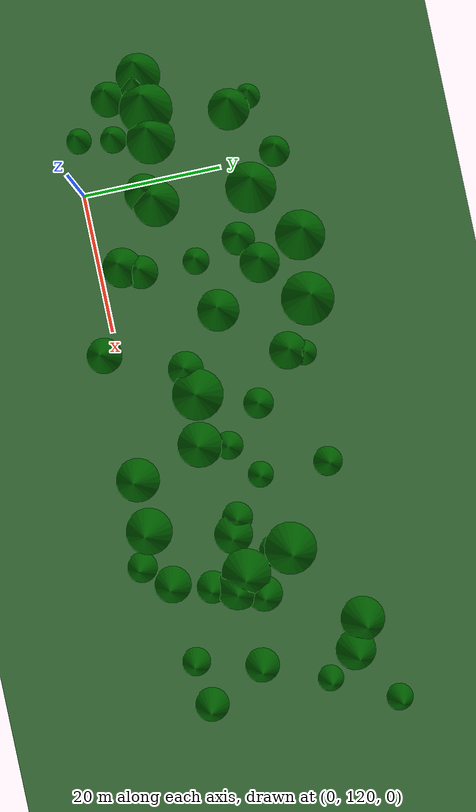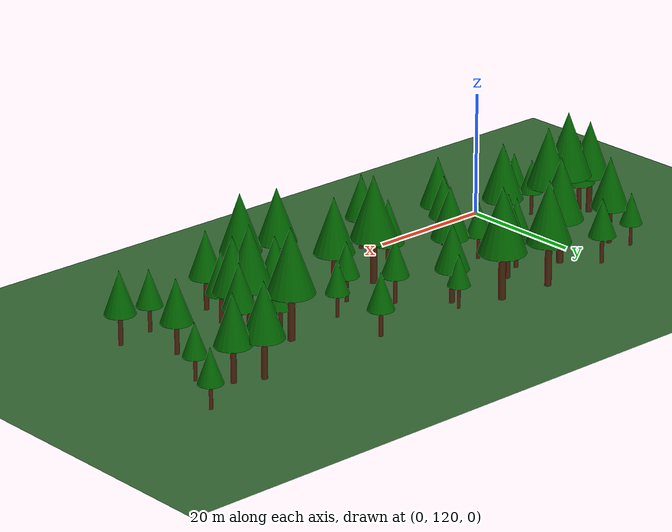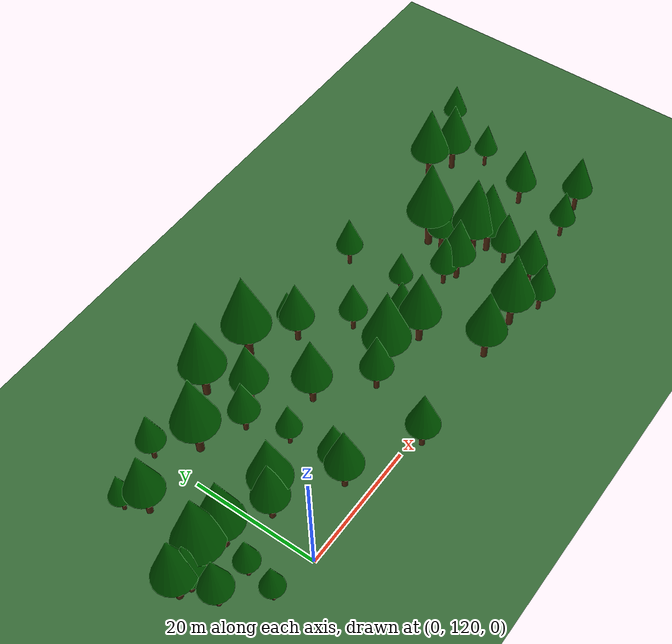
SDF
<sdf version="1.9">
 <world name="Forest_world">
  <model name="ground_plane">
   <static>true</static>
   <link name="link">
    <collision name="collision">
     <geometry><plane><normal>0 0 1</normal><size>500 500</size></plane></geometry>
    </collision>
    <visual name="visual">
     <geometry><plane><normal>0 0 1</normal><size>500 500</size></plane></geometry>
     <material><ambient>0.2 0.4 0.2 1</ambient><diffuse>0.2 0.4 0.2 1</diffuse></material>
    </visual>
   </link>
  </model>
  <model name="tree_13">
   <static>true</static>
   <pose>60.52 133.61 0 0 0 0</pose>
   <link name="link">
    <collision name="trunk_col">
     <pose>0 0 2.55 0 0 0</pose>
     <geometry><cylinder><radius>0.41</radius><length>5.10</length></cylinder></geometry>
    </collision>
    <visual name="trunk_vis">
     <pose>0 0 2.55 0 0 0</pose>
     <geometry><cylinder><radius>0.41</radius><length>5.10</length></cylinder></geometry>
     <material><ambient>0.3 0.15 0.05 1</ambient><diffuse>0.3 0.15 0.05 1</diffuse></material>
    </visual>
    <collision name="leaves_col">
     <pose>0 0 8.67 0 0 0</pose>
     <geometry><cone><radius>2.55</radius><length>7.14</length></cone></geometry>
    </collision>
    <visual name="leaves_vis">
     <pose>0 0 8.67 0 0 0</pose>
     <geometry><cone><radius>2.55</radius><length>7.14</length></cone></geometry>
     <material><ambient>0.0 0.4 0.0 1</ambient><diffuse>0.0 0.4 0.0 1</diffuse></material>
    </visual>
   </link>
  </model>
  <model name="tree_14">
   <static>true</static>
   <pose>31.30 130.26 0 0 0 0</pose>
   <link name="link">
    <collision name="trunk_col">
     <pose>0 0 3.61 0 0 0</pose>
     <geometry><cylinder><radius>0.58</radius><length>7.22</length></cylinder></geometry>
    </collision>
    <visual name="trunk_vis">
     <pose>0 0 3.61 0 0 0</pose>
     <geometry><cylinder><radius>0.58</radius><length>7.22</length></cylinder></geometry>
     <material><ambient>0.3 0.15 0.05 1</ambient><diffuse>0.3 0.15 0.05 1</diffuse></material>
    </visual>
    <collision name="leaves_col">
     <pose>0 0 12.27 0 0 0</pose>
     <geometry><cone><radius>3.61</radius><length>10.10</length></cone></geometry>
    </collision>
    <visual name="leaves_vis">
     <pose>0 0 12.27 0 0 0</pose>
     <geometry><cone><radius>3.61</radius><length>10.10</length></cone></geometry>
     <material><ambient>0.0 0.4 0.0 1</ambient><diffuse>0.0 0.4 0.0 1</diffuse></material>
    </visual>
   </link>
  </model>
  <model name="tree_25">
   <static>true</static>
   <pose>74.31 140.23 0 0 0 0</pose>
   <link name="link">
    <collision name="trunk_col">
     <pose>0 0 1.88 0 0 0</pose>
     <geometry><cylinder><radius>0.30</radius><length>3.75</length></cylinder></geometry>
    </collision>
    <visual name="trunk_vis">
     <pose>0 0 1.88 0 0 0</pose>
     <geometry><cylinder><radius>0.30</radius><length>3.75</length></cylinder></geometry>
     <material><ambient>0.3 0.15 0.05 1</ambient><diffuse>0.3 0.15 0.05 1</diffuse></material>
    </visual>
    <collision name="leaves_col">
     <pose>0 0 6.38 0 0 0</pose>
     <geometry><cone><radius>1.88</radius><length>5.25</length></cone></geometry>
    </collision>
    <visual name="leaves_vis">
     <pose>0 0 6.38 0 0 0</pose>
     <geometry><cone><radius>1.88</radius><length>5.25</length></cone></geometry>
     <material><ambient>0.0 0.4 0.0 1</ambient><diffuse>0.0 0.4 0.0 1</diffuse></material>
    </visual>
   </link>
  </model>
  <model name="tree_29">
   <static>true</static>
   <pose>0.05 147.82 0 0 0 0</pose>
   <link name="link">
    <collision name="trunk_col">
     <pose>0 0 2.18 0 0 0</pose>
     <geometry><cylinder><radius>0.35</radius><length>4.36</length></cylinder></geometry>
    </collision>
    <visual name="trunk_vis">
     <pose>0 0 2.18 0 0 0</pose>
     <geometry><cylinder><radius>0.35</radius><length>4.36</length></cylinder></geometry>
     <material><ambient>0.3 0.15 0.05 1</ambient><diffuse>0.3 0.15 0.05 1</diffuse></material>
    </visual>
    <collision name="leaves_col">
     <pose>0 0 7.42 0 0 0</pose>
     <geometry><cone><radius>2.18</radius><length>6.11</length></cone></geometry>
    </collision>
    <visual name="leaves_vis">
     <pose>0 0 7.42 0 0 0</pose>
     <geometry><cone><radius>2.18</radius><length>6.11</length></cone></geometry>
     <material><ambient>0.0 0.4 0.0 1</ambient><diffuse>0.0 0.4 0.0 1</diffuse></material>
    </visual>
   </link>
  </model>
  <model name="tree_32">
   <static>true</static>
   <pose>70.30 131.21 0 0 0 0</pose>
   <link name="link">
    <collision name="trunk_col">
     <pose>0 0 2.46 0 0 0</pose>
     <geometry><cylinder><radius>0.39</radius><length>4.92</length></cylinder></geometry>
    </collision>
    <visual name="trunk_vis">
     <pose>0 0 2.46 0 0 0</pose>
     <geometry><cylinder><radius>0.39</radius><length>4.92</length></cylinder></geometry>
     <material><ambient>0.3 0.15 0.05 1</ambient><diffuse>0.3 0.15 0.05 1</diffuse></material>
    </visual>
    <collision name="leaves_col">
     <pose>0 0 8.36 0 0 0</pose>
     <geometry><cone><radius>2.46</radius><length>6.88</length></cone></geometry>
    </collision>
    <visual name="leaves_vis">
     <pose>0 0 8.36 0 0 0</pose>
     <geometry><cone><radius>2.46</radius><length>6.88</length></cone></geometry>
     <material><ambient>0.0 0.4 0.0 1</ambient><diffuse>0.0 0.4 0.0 1</diffuse></material>
    </visual>
   </link>
  </model>
  <model name="tree_34">
   <static>true</static>
   <pose>41.25 119.61 0 0 0 0</pose>
   <link name="link">
    <collision name="trunk_col">
     <pose>0 0 3.09 0 0 0</pose>
     <geometry><cylinder><radius>0.49</radius><length>6.18</length></cylinder></geometry>
    </collision>
    <visual name="trunk_vis">
     <pose>0 0 3.09 0 0 0</pose>
     <geometry><cylinder><radius>0.49</radius><length>6.18</length></cylinder></geometry>
     <material><ambient>0.3 0.15 0.05 1</ambient><diffuse>0.3 0.15 0.05 1</diffuse></material>
    </visual>
    <collision name="leaves_col">
     <pose>0 0 10.50 0 0 0</pose>
     <geometry><cone><radius>3.09</radius><length>8.65</length></cone></geometry>
    </collision>
    <visual name="leaves_vis">
     <pose>0 0 10.50 0 0 0</pose>
     <geometry><cone><radius>3.09</radius><length>8.65</length></cone></geometry>
     <material><ambient>0.0 0.4 0.0 1</ambient><diffuse>0.0 0.4 0.0 1</diffuse></material>
    </visual>
   </link>
  </model>
  <model name="tree_38">
   <static>true</static>
   <pose>78.88 149.20 0 0 0 0</pose>
   <link name="link">
    <collision name="trunk_col">
     <pose>0 0 1.94 0 0 0</pose>
     <geometry><cylinder><radius>0.31</radius><length>3.89</length></cylinder></geometry>
    </collision>
    <visual name="trunk_vis">
     <pose>0 0 1.94 0 0 0</pose>
     <geometry><cylinder><radius>0.31</radius><length>3.89</length></cylinder></geometry>
     <material><ambient>0.3 0.15 0.05 1</ambient><diffuse>0.3 0.15 0.05 1</diffuse></material>
    </visual>
    <collision name="leaves_col">
     <pose>0 0 6.61 0 0 0</pose>
     <geometry><cone><radius>1.94</radius><length>5.44</length></cone></geometry>
    </collision>
    <visual name="leaves_vis">
     <pose>0 0 6.61 0 0 0</pose>
     <geometry><cone><radius>1.94</radius><length>5.44</length></cone></geometry>
     <material><ambient>0.0 0.4 0.0 1</ambient><diffuse>0.0 0.4 0.0 1</diffuse></material>
    </visual>
   </link>
  </model>
  <model name="tree_42">
   <static>true</static>
   <pose>4.71 143.42 0 0 0 0</pose>
   <link name="link">
    <collision name="trunk_col">
     <pose>0 0 3.57 0 0 0</pose>
     <geometry><cylinder><radius>0.57</radius><length>7.14</length></cylinder></geometry>
    </collision>
    <visual name="trunk_vis">
     <pose>0 0 3.57 0 0 0</pose>
     <geometry><cylinder><radius>0.57</radius><length>7.14</length></cylinder></geometry>
     <material><ambient>0.3 0.15 0.05 1</ambient><diffuse>0.3 0.15 0.05 1</diffuse></material>
    </visual>
    <collision name="leaves_col">
     <pose>0 0 12.14 0 0 0</pose>
     <geometry><cone><radius>3.57</radius><length>10.00</length></cone></geometry>
    </collision>
    <visual name="leaves_vis">
     <pose>0 0 12.14 0 0 0</pose>
     <geometry><cone><radius>3.57</radius><length>10.00</length></cone></geometry>
     <material><ambient>0.0 0.4 0.0 1</ambient><diffuse>0.0 0.4 0.0 1</diffuse></material>
    </visual>
   </link>
  </model>
  <model name="tree_43">
   <static>true</static>
   <pose>49.33 132.07 0 0 0 0</pose>
   <link name="link">
    <collision name="trunk_col">
     <pose>0 0 2.20 0 0 0</pose>
     <geometry><cylinder><radius>0.35</radius><length>4.39</length></cylinder></geometry>
    </collision>
    <visual name="trunk_vis">
     <pose>0 0 2.20 0 0 0</pose>
     <geometry><cylinder><radius>0.35</radius><length>4.39</length></cylinder></geometry>
     <material><ambient>0.3 0.15 0.05 1</ambient><diffuse>0.3 0.15 0.05 1</diffuse></material>
    </visual>
    <collision name="leaves_col">
     <pose>0 0 7.47 0 0 0</pose>
     <geometry><cone><radius>2.20</radius><length>6.15</length></cone></geometry>
    </collision>
    <visual name="leaves_vis">
     <pose>0 0 7.47 0 0 0</pose>
     <geometry><cone><radius>2.20</radius><length>6.15</length></cone></geometry>
     <material><ambient>0.0 0.4 0.0 1</ambient><diffuse>0.0 0.4 0.0 1</diffuse></material>
    </visual>
   </link>
  </model>
  <model name="tree_45">
   <static>true</static>
   <pose>12.86 126.06 0 0 0 0</pose>
   <link name="link">
    <collision name="trunk_col">
     <pose>0 0 2.37 0 0 0</pose>
     <geometry><cylinder><radius>0.38</radius><length>4.74</length></cylinder></geometry>
    </collision>
    <visual name="trunk_vis">
     <pose>0 0 2.37 0 0 0</pose>
     <geometry><cylinder><radius>0.38</radius><length>4.74</length></cylinder></geometry>
     <material><ambient>0.3 0.15 0.05 1</ambient><diffuse>0.3 0.15 0.05 1</diffuse></material>
    </visual>
    <collision name="leaves_col">
     <pose>0 0 8.06 0 0 0</pose>
     <geometry><cone><radius>2.37</radius><length>6.64</length></cone></geometry>
    </collision>
    <visual name="leaves_vis">
     <pose>0 0 8.06 0 0 0</pose>
     <geometry><cone><radius>2.37</radius><length>6.64</length></cone></geometry>
     <material><ambient>0.0 0.4 0.0 1</ambient><diffuse>0.0 0.4 0.0 1</diffuse></material>
    </visual>
   </link>
  </model>
  <model name="tree_46">
   <static>true</static>
   <pose>-8.87 131.46 0 0 0 0</pose>
   <link name="link">
    <collision name="trunk_col">
     <pose>0 0 3.73 0 0 0</pose>
     <geometry><cylinder><radius>0.60</radius><length>7.46</length></cylinder></geometry>
    </collision>
    <visual name="trunk_vis">
     <pose>0 0 3.73 0 0 0</pose>
     <geometry><cylinder><radius>0.60</radius><length>7.46</length></cylinder></geometry>
     <material><ambient>0.3 0.15 0.05 1</ambient><diffuse>0.3 0.15 0.05 1</diffuse></material>
    </visual>
    <collision name="leaves_col">
     <pose>0 0 12.68 0 0 0</pose>
     <geometry><cone><radius>3.73</radius><length>10.45</length></cone></geometry>
    </collision>
    <visual name="leaves_vis">
     <pose>0 0 12.68 0 0 0</pose>
     <geometry><cone><radius>3.73</radius><length>10.45</length></cone></geometry>
     <material><ambient>0.0 0.4 0.0 1</ambient><diffuse>0.0 0.4 0.0 1</diffuse></material>
    </visual>
   </link>
  </model>
  <model name="tree_47">
   <static>true</static>
   <pose>-8.44 145.77 0 0 0 0</pose>
   <link name="link">
    <collision name="trunk_col">
     <pose>0 0 1.80 0 0 0</pose>
     <geometry><cylinder><radius>0.29</radius><length>3.60</length></cylinder></geometry>
    </collision>
    <visual name="trunk_vis">
     <pose>0 0 1.80 0 0 0</pose>
     <geometry><cylinder><radius>0.29</radius><length>3.60</length></cylinder></geometry>
     <material><ambient>0.3 0.15 0.05 1</ambient><diffuse>0.3 0.15 0.05 1</diffuse></material>
    </visual>
    <collision name="leaves_col">
     <pose>0 0 6.11 0 0 0</pose>
     <geometry><cone><radius>1.80</radius><length>5.03</length></cone></geometry>
    </collision>
    <visual name="leaves_vis">
     <pose>0 0 6.11 0 0 0</pose>
     <geometry><cone><radius>1.80</radius><length>5.03</length></cone></geometry>
     <material><ambient>0.0 0.4 0.0 1</ambient><diffuse>0.0 0.4 0.0 1</diffuse></material>
    </visual>
   </link>
  </model>
  <model name="tree_52">
   <static>true</static>
   <pose>21.44 147.92 0 0 0 0</pose>
   <link name="link">
    <collision name="trunk_col">
     <pose>0 0 3.74 0 0 0</pose>
     <geometry><cylinder><radius>0.60</radius><length>7.48</length></cylinder></geometry>
    </collision>
    <visual name="trunk_vis">
     <pose>0 0 3.74 0 0 0</pose>
     <geometry><cylinder><radius>0.60</radius><length>7.48</length></cylinder></geometry>
     <material><ambient>0.3 0.15 0.05 1</ambient><diffuse>0.3 0.15 0.05 1</diffuse></material>
    </visual>
    <collision name="leaves_col">
     <pose>0 0 12.72 0 0 0</pose>
     <geometry><cone><radius>3.74</radius><length>10.48</length></cone></geometry>
    </collision>
    <visual name="leaves_vis">
     <pose>0 0 12.72 0 0 0</pose>
     <geometry><cone><radius>3.74</radius><length>10.48</length></cone></geometry>
     <material><ambient>0.0 0.4 0.0 1</ambient><diffuse>0.0 0.4 0.0 1</diffuse></material>
    </visual>
   </link>
  </model>
  <model name="tree_58">
   <static>true</static>
   <pose>74.25 123.18 0 0 0 0</pose>
   <link name="link">
    <collision name="trunk_col">
     <pose>0 0 2.43 0 0 0</pose>
     <geometry><cylinder><radius>0.39</radius><length>4.87</length></cylinder></geometry>
    </collision>
    <visual name="trunk_vis">
     <pose>0 0 2.43 0 0 0</pose>
     <geometry><cylinder><radius>0.39</radius><length>4.87</length></cylinder></geometry>
     <material><ambient>0.3 0.15 0.05 1</ambient><diffuse>0.3 0.15 0.05 1</diffuse></material>
    </visual>
    <collision name="leaves_col">
     <pose>0 0 8.27 0 0 0</pose>
     <geometry><cone><radius>2.43</radius><length>6.81</length></cone></geometry>
    </collision>
    <visual name="leaves_vis">
     <pose>0 0 8.27 0 0 0</pose>
     <geometry><cone><radius>2.43</radius><length>6.81</length></cone></geometry>
     <material><ambient>0.0 0.4 0.0 1</ambient><diffuse>0.0 0.4 0.0 1</diffuse></material>
    </visual>
   </link>
  </model>
  <model name="tree_59">
   <static>true</static>
   <pose>53.47 117.54 0 0 0 0</pose>
   <link name="link">
    <collision name="trunk_col">
     <pose>0 0 2.17 0 0 0</pose>
     <geometry><cylinder><radius>0.35</radius><length>4.34</length></cylinder></geometry>
    </collision>
    <visual name="trunk_vis">
     <pose>0 0 2.17 0 0 0</pose>
     <geometry><cylinder><radius>0.35</radius><length>4.34</length></cylinder></geometry>
     <material><ambient>0.3 0.15 0.05 1</ambient><diffuse>0.3 0.15 0.05 1</diffuse></material>
    </visual>
    <collision name="leaves_col">
     <pose>0 0 7.39 0 0 0</pose>
     <geometry><cone><radius>2.17</radius><length>6.08</length></cone></geometry>
    </collision>
    <visual name="leaves_vis">
     <pose>0 0 7.39 0 0 0</pose>
     <geometry><cone><radius>2.17</radius><length>6.08</length></cone></geometry>
     <material><ambient>0.0 0.4 0.0 1</ambient><diffuse>0.0 0.4 0.0 1</diffuse></material>
    </visual>
   </link>
  </model>
  <model name="tree_65">
   <static>true</static>
   <pose>44.15 136.52 0 0 0 0</pose>
   <link name="link">
    <collision name="trunk_col">
     <pose>0 0 1.87 0 0 0</pose>
     <geometry><cylinder><radius>0.30</radius><length>3.74</length></cylinder></geometry>
    </collision>
    <visual name="trunk_vis">
     <pose>0 0 1.87 0 0 0</pose>
     <geometry><cylinder><radius>0.30</radius><length>3.74</length></cylinder></geometry>
     <material><ambient>0.3 0.15 0.05 1</ambient><diffuse>0.3 0.15 0.05 1</diffuse></material>
    </visual>
    <collision name="leaves_col">
     <pose>0 0 6.36 0 0 0</pose>
     <geometry><cone><radius>1.87</radius><length>5.24</length></cone></geometry>
    </collision>
    <visual name="leaves_vis">
     <pose>0 0 6.36 0 0 0</pose>
     <geometry><cone><radius>1.87</radius><length>5.24</length></cone></geometry>
     <material><ambient>0.0 0.4 0.0 1</ambient><diffuse>0.0 0.4 0.0 1</diffuse></material>
    </visual>
   </link>
  </model>
  <model name="tree_75">
   <static>true</static>
   <pose>27.87 143.85 0 0 0 0</pose>
   <link name="link">
    <collision name="trunk_col">
     <pose>0 0 2.67 0 0 0</pose>
     <geometry><cylinder><radius>0.43</radius><length>5.35</length></cylinder></geometry>
    </collision>
    <visual name="trunk_vis">
     <pose>0 0 2.67 0 0 0</pose>
     <geometry><cylinder><radius>0.43</radius><length>5.35</length></cylinder></geometry>
     <material><ambient>0.3 0.15 0.05 1</ambient><diffuse>0.3 0.15 0.05 1</diffuse></material>
    </visual>
    <collision name="leaves_col">
     <pose>0 0 9.09 0 0 0</pose>
     <geometry><cone><radius>2.67</radius><length>7.49</length></cone></geometry>
    </collision>
    <visual name="leaves_vis">
     <pose>0 0 9.09 0 0 0</pose>
     <geometry><cone><radius>2.67</radius><length>7.49</length></cone></geometry>
     <material><ambient>0.0 0.4 0.0 1</ambient><diffuse>0.0 0.4 0.0 1</diffuse></material>
    </visual>
   </link>
  </model>
  <model name="tree_80">
   <static>true</static>
   <pose>12.57 148.76 0 0 0 0</pose>
   <link name="link">
    <collision name="trunk_col">
     <pose>0 0 3.52 0 0 0</pose>
     <geometry><cylinder><radius>0.56</radius><length>7.04</length></cylinder></geometry>
    </collision>
    <visual name="trunk_vis">
     <pose>0 0 3.52 0 0 0</pose>
     <geometry><cylinder><radius>0.56</radius><length>7.04</length></cylinder></geometry>
     <material><ambient>0.3 0.15 0.05 1</ambient><diffuse>0.3 0.15 0.05 1</diffuse></material>
    </visual>
    <collision name="leaves_col">
     <pose>0 0 11.96 0 0 0</pose>
     <geometry><cone><radius>3.52</radius><length>9.85</length></cone></geometry>
    </collision>
    <visual name="leaves_vis">
     <pose>0 0 11.96 0 0 0</pose>
     <geometry><cone><radius>3.52</radius><length>9.85</length></cone></geometry>
     <material><ambient>0.0 0.4 0.0 1</ambient><diffuse>0.0 0.4 0.0 1</diffuse></material>
    </visual>
   </link>
  </model>
  <model name="tree_82">
   <static>true</static>
   <pose>-11.78 126.52 0 0 0 0</pose>
   <link name="link">
    <collision name="trunk_col">
     <pose>0 0 2.50 0 0 0</pose>
     <geometry><cylinder><radius>0.40</radius><length>5.00</length></cylinder></geometry>
    </collision>
    <visual name="trunk_vis">
     <pose>0 0 2.50 0 0 0</pose>
     <geometry><cylinder><radius>0.40</radius><length>5.00</length></cylinder></geometry>
     <material><ambient>0.3 0.15 0.05 1</ambient><diffuse>0.3 0.15 0.05 1</diffuse></material>
    </visual>
    <collision name="leaves_col">
     <pose>0 0 8.50 0 0 0</pose>
     <geometry><cone><radius>2.50</radius><length>7.00</length></cone></geometry>
    </collision>
    <visual name="leaves_vis">
     <pose>0 0 8.50 0 0 0</pose>
     <geometry><cone><radius>2.50</radius><length>7.00</length></cone></geometry>
     <material><ambient>0.0 0.4 0.0 1</ambient><diffuse>0.0 0.4 0.0 1</diffuse></material>
    </visual>
   </link>
  </model>
  <model name="tree_83">
   <static>true</static>
   <pose>56.96 131.71 0 0 0 0</pose>
   <link name="link">
    <collision name="trunk_col">
     <pose>0 0 3.46 0 0 0</pose>
     <geometry><cylinder><radius>0.55</radius><length>6.92</length></cylinder></geometry>
    </collision>
    <visual name="trunk_vis">
     <pose>0 0 3.46 0 0 0</pose>
     <geometry><cylinder><radius>0.55</radius><length>6.92</length></cylinder></geometry>
     <material><ambient>0.3 0.15 0.05 1</ambient><diffuse>0.3 0.15 0.05 1</diffuse></material>
    </visual>
    <collision name="leaves_col">
     <pose>0 0 11.77 0 0 0</pose>
     <geometry><cone><radius>3.46</radius><length>9.69</length></cone></geometry>
    </collision>
    <visual name="leaves_vis">
     <pose>0 0 11.77 0 0 0</pose>
     <geometry><cone><radius>3.46</radius><length>9.69</length></cone></geometry>
     <material><ambient>0.0 0.4 0.0 1</ambient><diffuse>0.0 0.4 0.0 1</diffuse></material>
    </visual>
   </link>
  </model>
  <model name="tree_86">
   <static>true</static>
   <pose>56.61 121.30 0 0 0 0</pose>
   <link name="link">
    <collision name="trunk_col">
     <pose>0 0 2.62 0 0 0</pose>
     <geometry><cylinder><radius>0.42</radius><length>5.24</length></cylinder></geometry>
    </collision>
    <visual name="trunk_vis">
     <pose>0 0 2.62 0 0 0</pose>
     <geometry><cylinder><radius>0.42</radius><length>5.24</length></cylinder></geometry>
     <material><ambient>0.3 0.15 0.05 1</ambient><diffuse>0.3 0.15 0.05 1</diffuse></material>
    </visual>
    <collision name="leaves_col">
     <pose>0 0 8.91 0 0 0</pose>
     <geometry><cone><radius>2.62</radius><length>7.33</length></cone></geometry>
    </collision>
    <visual name="leaves_vis">
     <pose>0 0 8.91 0 0 0</pose>
     <geometry><cone><radius>2.62</radius><length>7.33</length></cone></geometry>
     <material><ambient>0.0 0.4 0.0 1</ambient><diffuse>0.0 0.4 0.0 1</diffuse></material>
    </visual>
   </link>
  </model>
  <model name="tree_87">
   <static>true</static>
   <pose>20.40 135.47 0 0 0 0</pose>
   <link name="link">
    <collision name="trunk_col">
     <pose>0 0 2.97 0 0 0</pose>
     <geometry><cylinder><radius>0.47</radius><length>5.93</length></cylinder></geometry>
    </collision>
    <visual name="trunk_vis">
     <pose>0 0 2.97 0 0 0</pose>
     <geometry><cylinder><radius>0.47</radius><length>5.93</length></cylinder></geometry>
     <material><ambient>0.3 0.15 0.05 1</ambient><diffuse>0.3 0.15 0.05 1</diffuse></material>
    </visual>
    <collision name="leaves_col">
     <pose>0 0 10.09 0 0 0</pose>
     <geometry><cone><radius>2.97</radius><length>8.31</length></cone></geometry>
    </collision>
    <visual name="leaves_vis">
     <pose>0 0 10.09 0 0 0</pose>
     <geometry><cone><radius>2.97</radius><length>8.31</length></cone></geometry>
     <material><ambient>0.0 0.4 0.0 1</ambient><diffuse>0.0 0.4 0.0 1</diffuse></material>
    </visual>
   </link>
  </model>
  <model name="tree_93">
   <static>true</static>
   <pose>4.11 130.12 0 0 0 0</pose>
   <link name="link">
    <collision name="trunk_col">
     <pose>0 0 3.25 0 0 0</pose>
     <geometry><cylinder><radius>0.52</radius><length>6.50</length></cylinder></geometry>
    </collision>
    <visual name="trunk_vis">
     <pose>0 0 3.25 0 0 0</pose>
     <geometry><cylinder><radius>0.52</radius><length>6.50</length></cylinder></geometry>
     <material><ambient>0.3 0.15 0.05 1</ambient><diffuse>0.3 0.15 0.05 1</diffuse></material>
    </visual>
    <collision name="leaves_col">
     <pose>0 0 11.06 0 0 0</pose>
     <geometry><cone><radius>3.25</radius><length>9.11</length></cone></geometry>
    </collision>
    <visual name="leaves_vis">
     <pose>0 0 11.06 0 0 0</pose>
     <geometry><cone><radius>3.25</radius><length>9.11</length></cone></geometry>
     <material><ambient>0.0 0.4 0.0 1</ambient><diffuse>0.0 0.4 0.0 1</diffuse></material>
    </visual>
   </link>
  </model>
  <model name="tree_109">
   <static>true</static>
   <pose>-13.90 131.33 0 0 0 0</pose>
   <link name="link">
    <collision name="trunk_col">
     <pose>0 0 3.15 0 0 0</pose>
     <geometry><cylinder><radius>0.50</radius><length>6.31</length></cylinder></geometry>
    </collision>
    <visual name="trunk_vis">
     <pose>0 0 3.15 0 0 0</pose>
     <geometry><cylinder><radius>0.50</radius><length>6.31</length></cylinder></geometry>
     <material><ambient>0.3 0.15 0.05 1</ambient><diffuse>0.3 0.15 0.05 1</diffuse></material>
    </visual>
    <collision name="leaves_col">
     <pose>0 0 10.73 0 0 0</pose>
     <geometry><cone><radius>3.15</radius><length>8.83</length></cone></geometry>
    </collision>
    <visual name="leaves_vis">
     <pose>0 0 10.73 0 0 0</pose>
     <geometry><cone><radius>3.15</radius><length>8.83</length></cone></geometry>
     <material><ambient>0.0 0.4 0.0 1</ambient><diffuse>0.0 0.4 0.0 1</diffuse></material>
    </visual>
   </link>
  </model>
  <model name="tree_110">
   <static>true</static>
   <pose>-4.69 131.22 0 0 0 0</pose>
   <link name="link">
    <collision name="trunk_col">
     <pose>0 0 3.41 0 0 0</pose>
     <geometry><cylinder><radius>0.55</radius><length>6.82</length></cylinder></geometry>
    </collision>
    <visual name="trunk_vis">
     <pose>0 0 3.41 0 0 0</pose>
     <geometry><cylinder><radius>0.55</radius><length>6.82</length></cylinder></geometry>
     <material><ambient>0.3 0.15 0.05 1</ambient><diffuse>0.3 0.15 0.05 1</diffuse></material>
    </visual>
    <collision name="leaves_col">
     <pose>0 0 11.60 0 0 0</pose>
     <geometry><cone><radius>3.41</radius><length>9.55</length></cone></geometry>
    </collision>
    <visual name="leaves_vis">
     <pose>0 0 11.60 0 0 0</pose>
     <geometry><cone><radius>3.41</radius><length>9.55</length></cone></geometry>
     <material><ambient>0.0 0.4 0.0 1</ambient><diffuse>0.0 0.4 0.0 1</diffuse></material>
    </visual>
   </link>
  </model>
  <model name="tree_111">
   <static>true</static>
   <pose>66.59 146.25 0 0 0 0</pose>
   <link name="link">
    <collision name="trunk_col">
     <pose>0 0 3.13 0 0 0</pose>
     <geometry><cylinder><radius>0.50</radius><length>6.26</length></cylinder></geometry>
    </collision>
    <visual name="trunk_vis">
     <pose>0 0 3.13 0 0 0</pose>
     <geometry><cylinder><radius>0.50</radius><length>6.26</length></cylinder></geometry>
     <material><ambient>0.3 0.15 0.05 1</ambient><diffuse>0.3 0.15 0.05 1</diffuse></material>
    </visual>
    <collision name="leaves_col">
     <pose>0 0 10.64 0 0 0</pose>
     <geometry><cone><radius>3.13</radius><length>8.76</length></cone></geometry>
    </collision>
    <visual name="leaves_vis">
     <pose>0 0 10.64 0 0 0</pose>
     <geometry><cone><radius>3.13</radius><length>8.76</length></cone></geometry>
     <material><ambient>0.0 0.4 0.0 1</ambient><diffuse>0.0 0.4 0.0 1</diffuse></material>
    </visual>
   </link>
  </model>
  <model name="tree_113">
   <static>true</static>
   <pose>28.60 146.10 0 0 0 0</pose>
   <link name="link">
    <collision name="trunk_col">
     <pose>0 0 1.80 0 0 0</pose>
     <geometry><cylinder><radius>0.29</radius><length>3.59</length></cylinder></geometry>
    </collision>
    <visual name="trunk_vis">
     <pose>0 0 1.80 0 0 0</pose>
     <geometry><cylinder><radius>0.29</radius><length>3.59</length></cylinder></geometry>
     <material><ambient>0.3 0.15 0.05 1</ambient><diffuse>0.3 0.15 0.05 1</diffuse></material>
    </visual>
    <collision name="leaves_col">
     <pose>0 0 6.11 0 0 0</pose>
     <geometry><cone><radius>1.80</radius><length>5.03</length></cone></geometry>
    </collision>
    <visual name="leaves_vis">
     <pose>0 0 6.11 0 0 0</pose>
     <geometry><cone><radius>1.80</radius><length>5.03</length></cone></geometry>
     <material><ambient>0.0 0.4 0.0 1</ambient><diffuse>0.0 0.4 0.0 1</diffuse></material>
    </visual>
   </link>
  </model>
  <model name="tree_117">
   <static>true</static>
   <pose>-7.12 121.19 0 0 0 0</pose>
   <link name="link">
    <collision name="trunk_col">
     <pose>0 0 1.82 0 0 0</pose>
     <geometry><cylinder><radius>0.29</radius><length>3.64</length></cylinder></geometry>
    </collision>
    <visual name="trunk_vis">
     <pose>0 0 1.82 0 0 0</pose>
     <geometry><cylinder><radius>0.29</radius><length>3.64</length></cylinder></geometry>
     <material><ambient>0.3 0.15 0.05 1</ambient><diffuse>0.3 0.15 0.05 1</diffuse></material>
    </visual>
    <collision name="leaves_col">
     <pose>0 0 6.20 0 0 0</pose>
     <geometry><cone><radius>1.82</radius><length>5.10</length></cone></geometry>
    </collision>
    <visual name="leaves_vis">
     <pose>0 0 6.20 0 0 0</pose>
     <geometry><cone><radius>1.82</radius><length>5.10</length></cone></geometry>
     <material><ambient>0.0 0.4 0.0 1</ambient><diffuse>0.0 0.4 0.0 1</diffuse></material>
    </visual>
   </link>
  </model>
  <model name="tree_121">
   <static>true</static>
   <pose>11.78 123.57 0 0 0 0</pose>
   <link name="link">
    <collision name="trunk_col">
     <pose>0 0 2.81 0 0 0</pose>
     <geometry><cylinder><radius>0.45</radius><length>5.61</length></cylinder></geometry>
    </collision>
    <visual name="trunk_vis">
     <pose>0 0 2.81 0 0 0</pose>
     <geometry><cylinder><radius>0.45</radius><length>5.61</length></cylinder></geometry>
     <material><ambient>0.3 0.15 0.05 1</ambient><diffuse>0.3 0.15 0.05 1</diffuse></material>
    </visual>
    <collision name="leaves_col">
     <pose>0 0 9.55 0 0 0</pose>
     <geometry><cone><radius>2.81</radius><length>7.86</length></cone></geometry>
    </collision>
    <visual name="leaves_vis">
     <pose>0 0 9.55 0 0 0</pose>
     <geometry><cone><radius>2.81</radius><length>7.86</length></cone></geometry>
     <material><ambient>0.0 0.4 0.0 1</ambient><diffuse>0.0 0.4 0.0 1</diffuse></material>
    </visual>
   </link>
  </model>
  <model name="tree_125">
   <static>true</static>
   <pose>58.20 126.67 0 0 0 0</pose>
   <link name="link">
    <collision name="trunk_col">
     <pose>0 0 2.32 0 0 0</pose>
     <geometry><cylinder><radius>0.37</radius><length>4.64</length></cylinder></geometry>
    </collision>
    <visual name="trunk_vis">
     <pose>0 0 2.32 0 0 0</pose>
     <geometry><cylinder><radius>0.37</radius><length>4.64</length></cylinder></geometry>
     <material><ambient>0.3 0.15 0.05 1</ambient><diffuse>0.3 0.15 0.05 1</diffuse></material>
    </visual>
    <collision name="leaves_col">
     <pose>0 0 7.89 0 0 0</pose>
     <geometry><cone><radius>2.32</radius><length>6.50</length></cone></geometry>
    </collision>
    <visual name="leaves_vis">
     <pose>0 0 7.89 0 0 0</pose>
     <geometry><cone><radius>2.32</radius><length>6.50</length></cone></geometry>
     <material><ambient>0.0 0.4 0.0 1</ambient><diffuse>0.0 0.4 0.0 1</diffuse></material>
    </visual>
   </link>
  </model>
  <model name="tree_149">
   <static>true</static>
   <pose>27.48 129.30 0 0 0 0</pose>
   <link name="link">
    <collision name="trunk_col">
     <pose>0 0 2.54 0 0 0</pose>
     <geometry><cylinder><radius>0.41</radius><length>5.08</length></cylinder></geometry>
    </collision>
    <visual name="trunk_vis">
     <pose>0 0 2.54 0 0 0</pose>
     <geometry><cylinder><radius>0.41</radius><length>5.08</length></cylinder></geometry>
     <material><ambient>0.3 0.15 0.05 1</ambient><diffuse>0.3 0.15 0.05 1</diffuse></material>
    </visual>
    <collision name="leaves_col">
     <pose>0 0 8.64 0 0 0</pose>
     <geometry><cone><radius>2.54</radius><length>7.12</length></cone></geometry>
    </collision>
    <visual name="leaves_vis">
     <pose>0 0 8.64 0 0 0</pose>
     <geometry><cone><radius>2.54</radius><length>7.12</length></cone></geometry>
     <material><ambient>0.0 0.4 0.0 1</ambient><diffuse>0.0 0.4 0.0 1</diffuse></material>
    </visual>
   </link>
  </model>
  <model name="tree_151">
   <static>true</static>
   <pose>-6.30 126.01 0 0 0 0</pose>
   <link name="link">
    <collision name="trunk_col">
     <pose>0 0 1.91 0 0 0</pose>
     <geometry><cylinder><radius>0.31</radius><length>3.82</length></cylinder></geometry>
    </collision>
    <visual name="trunk_vis">
     <pose>0 0 1.91 0 0 0</pose>
     <geometry><cylinder><radius>0.31</radius><length>3.82</length></cylinder></geometry>
     <material><ambient>0.3 0.15 0.05 1</ambient><diffuse>0.3 0.15 0.05 1</diffuse></material>
    </visual>
    <collision name="leaves_col">
     <pose>0 0 6.49 0 0 0</pose>
     <geometry><cone><radius>1.91</radius><length>5.34</length></cone></geometry>
    </collision>
    <visual name="leaves_vis">
     <pose>0 0 6.49 0 0 0</pose>
     <geometry><cone><radius>1.91</radius><length>5.34</length></cone></geometry>
     <material><ambient>0.0 0.4 0.0 1</ambient><diffuse>0.0 0.4 0.0 1</diffuse></material>
    </visual>
   </link>
  </model>
  <model name="tree_155">
   <static>true</static>
   <pose>11.05 140.31 0 0 0 0</pose>
   <link name="link">
    <collision name="trunk_col">
     <pose>0 0 2.36 0 0 0</pose>
     <geometry><cylinder><radius>0.38</radius><length>4.71</length></cylinder></geometry>
    </collision>
    <visual name="trunk_vis">
     <pose>0 0 2.36 0 0 0</pose>
     <geometry><cylinder><radius>0.38</radius><length>4.71</length></cylinder></geometry>
     <material><ambient>0.3 0.15 0.05 1</ambient><diffuse>0.3 0.15 0.05 1</diffuse></material>
    </visual>
    <collision name="leaves_col">
     <pose>0 0 8.01 0 0 0</pose>
     <geometry><cone><radius>2.36</radius><length>6.60</length></cone></geometry>
    </collision>
    <visual name="leaves_vis">
     <pose>0 0 8.01 0 0 0</pose>
     <geometry><cone><radius>2.36</radius><length>6.60</length></cone></geometry>
     <material><ambient>0.0 0.4 0.0 1</ambient><diffuse>0.0 0.4 0.0 1</diffuse></material>
    </visual>
   </link>
  </model>
  <model name="tree_160">
   <static>true</static>
   <pose>38.21 129.11 0 0 0 0</pose>
   <link name="link">
    <collision name="trunk_col">
     <pose>0 0 3.19 0 0 0</pose>
     <geometry><cylinder><radius>0.51</radius><length>6.37</length></cylinder></geometry>
    </collision>
    <visual name="trunk_vis">
     <pose>0 0 3.19 0 0 0</pose>
     <geometry><cylinder><radius>0.51</radius><length>6.37</length></cylinder></geometry>
     <material><ambient>0.3 0.15 0.05 1</ambient><diffuse>0.3 0.15 0.05 1</diffuse></material>
    </visual>
    <collision name="leaves_col">
     <pose>0 0 10.83 0 0 0</pose>
     <geometry><cone><radius>3.19</radius><length>8.92</length></cone></geometry>
    </collision>
    <visual name="leaves_vis">
     <pose>0 0 10.83 0 0 0</pose>
     <geometry><cone><radius>3.19</radius><length>8.92</length></cone></geometry>
     <material><ambient>0.0 0.4 0.0 1</ambient><diffuse>0.0 0.4 0.0 1</diffuse></material>
    </visual>
   </link>
  </model>
  <model name="tree_161">
   <static>true</static>
   <pose>39.22 133.02 0 0 0 0</pose>
   <link name="link">
    <collision name="trunk_col">
     <pose>0 0 2.02 0 0 0</pose>
     <geometry><cylinder><radius>0.32</radius><length>4.04</length></cylinder></geometry>
    </collision>
    <visual name="trunk_vis">
     <pose>0 0 2.02 0 0 0</pose>
     <geometry><cylinder><radius>0.32</radius><length>4.04</length></cylinder></geometry>
     <material><ambient>0.3 0.15 0.05 1</ambient><diffuse>0.3 0.15 0.05 1</diffuse></material>
    </visual>
    <collision name="leaves_col">
     <pose>0 0 6.87 0 0 0</pose>
     <geometry><cone><radius>2.02</radius><length>5.66</length></cone></geometry>
    </collision>
    <visual name="leaves_vis">
     <pose>0 0 6.87 0 0 0</pose>
     <geometry><cone><radius>2.02</radius><length>5.66</length></cone></geometry>
     <material><ambient>0.0 0.4 0.0 1</ambient><diffuse>0.0 0.4 0.0 1</diffuse></material>
    </visual>
   </link>
  </model>
  <model name="tree_168">
   <static>true</static>
   <pose>58.86 130.22 0 0 0 0</pose>
   <link name="link">
    <collision name="trunk_col">
     <pose>0 0 3.10 0 0 0</pose>
     <geometry><cylinder><radius>0.50</radius><length>6.20</length></cylinder></geometry>
    </collision>
    <visual name="trunk_vis">
     <pose>0 0 3.10 0 0 0</pose>
     <geometry><cylinder><radius>0.50</radius><length>6.20</length></cylinder></geometry>
     <material><ambient>0.3 0.15 0.05 1</ambient><diffuse>0.3 0.15 0.05 1</diffuse></material>
    </visual>
    <collision name="leaves_col">
     <pose>0 0 10.55 0 0 0</pose>
     <geometry><cone><radius>3.10</radius><length>8.68</length></cone></geometry>
    </collision>
    <visual name="leaves_vis">
     <pose>0 0 10.55 0 0 0</pose>
     <geometry><cone><radius>3.10</radius><length>8.68</length></cone></geometry>
     <material><ambient>0.0 0.4 0.0 1</ambient><diffuse>0.0 0.4 0.0 1</diffuse></material>
    </visual>
   </link>
  </model>
  <model name="tree_172">
   <static>true</static>
   <pose>23.28 118.56 0 0 0 0</pose>
   <link name="link">
    <collision name="trunk_col">
     <pose>0 0 2.54 0 0 0</pose>
     <geometry><cylinder><radius>0.41</radius><length>5.08</length></cylinder></geometry>
    </collision>
    <visual name="trunk_vis">
     <pose>0 0 2.54 0 0 0</pose>
     <geometry><cylinder><radius>0.41</radius><length>5.08</length></cylinder></geometry>
     <material><ambient>0.3 0.15 0.05 1</ambient><diffuse>0.3 0.15 0.05 1</diffuse></material>
    </visual>
    <collision name="leaves_col">
     <pose>0 0 8.63 0 0 0</pose>
     <geometry><cone><radius>2.54</radius><length>7.11</length></cone></geometry>
    </collision>
    <visual name="leaves_vis">
     <pose>0 0 8.63 0 0 0</pose>
     <geometry><cone><radius>2.54</radius><length>7.11</length></cone></geometry>
     <material><ambient>0.0 0.4 0.0 1</ambient><diffuse>0.0 0.4 0.0 1</diffuse></material>
    </visual>
   </link>
  </model>
  <model name="tree_176">
   <static>true</static>
   <pose>54.81 138.46 0 0 0 0</pose>
   <link name="link">
    <collision name="trunk_col">
     <pose>0 0 3.67 0 0 0</pose>
     <geometry><cylinder><radius>0.59</radius><length>7.35</length></cylinder></geometry>
    </collision>
    <visual name="trunk_vis">
     <pose>0 0 3.67 0 0 0</pose>
     <geometry><cylinder><radius>0.59</radius><length>7.35</length></cylinder></geometry>
     <material><ambient>0.3 0.15 0.05 1</ambient><diffuse>0.3 0.15 0.05 1</diffuse></material>
    </visual>
    <collision name="leaves_col">
     <pose>0 0 12.49 0 0 0</pose>
     <geometry><cone><radius>3.67</radius><length>10.28</length></cone></geometry>
    </collision>
    <visual name="leaves_vis">
     <pose>0 0 12.49 0 0 0</pose>
     <geometry><cone><radius>3.67</radius><length>10.28</length></cone></geometry>
     <material><ambient>0.0 0.4 0.0 1</ambient><diffuse>0.0 0.4 0.0 1</diffuse></material>
    </visual>
   </link>
  </model>
  <model name="tree_188">
   <static>true</static>
   <pose>48.53 119.69 0 0 0 0</pose>
   <link name="link">
    <collision name="trunk_col">
     <pose>0 0 3.29 0 0 0</pose>
     <geometry><cylinder><radius>0.53</radius><length>6.59</length></cylinder></geometry>
    </collision>
    <visual name="trunk_vis">
     <pose>0 0 3.29 0 0 0</pose>
     <geometry><cylinder><radius>0.53</radius><length>6.59</length></cylinder></geometry>
     <material><ambient>0.3 0.15 0.05 1</ambient><diffuse>0.3 0.15 0.05 1</diffuse></material>
    </visual>
    <collision name="leaves_col">
     <pose>0 0 11.20 0 0 0</pose>
     <geometry><cone><radius>3.29</radius><length>9.22</length></cone></geometry>
    </collision>
    <visual name="leaves_vis">
     <pose>0 0 11.20 0 0 0</pose>
     <geometry><cone><radius>3.29</radius><length>9.22</length></cone></geometry>
     <material><ambient>0.0 0.4 0.0 1</ambient><diffuse>0.0 0.4 0.0 1</diffuse></material>
    </visual>
   </link>
  </model>
  <model name="tree_190">
   <static>true</static>
   <pose>70.76 144.42 0 0 0 0</pose>
   <link name="link">
    <collision name="trunk_col">
     <pose>0 0 2.86 0 0 0</pose>
     <geometry><cylinder><radius>0.46</radius><length>5.72</length></cylinder></geometry>
    </collision>
    <visual name="trunk_vis">
     <pose>0 0 2.86 0 0 0</pose>
     <geometry><cylinder><radius>0.46</radius><length>5.72</length></cylinder></geometry>
     <material><ambient>0.3 0.15 0.05 1</ambient><diffuse>0.3 0.15 0.05 1</diffuse></material>
    </visual>
    <collision name="leaves_col">
     <pose>0 0 9.73 0 0 0</pose>
     <geometry><cone><radius>2.86</radius><length>8.01</length></cone></geometry>
    </collision>
    <visual name="leaves_vis">
     <pose>0 0 9.73 0 0 0</pose>
     <geometry><cone><radius>2.86</radius><length>8.01</length></cone></geometry>
     <material><ambient>0.0 0.4 0.0 1</ambient><diffuse>0.0 0.4 0.0 1</diffuse></material>
    </visual>
   </link>
  </model>
  <model name="tree_194">
   <static>true</static>
   <pose>15.03 142.50 0 0 0 0</pose>
   <link name="link">
    <collision name="trunk_col">
     <pose>0 0 2.84 0 0 0</pose>
     <geometry><cylinder><radius>0.46</radius><length>5.69</length></cylinder></geometry>
    </collision>
    <visual name="trunk_vis">
     <pose>0 0 2.84 0 0 0</pose>
     <geometry><cylinder><radius>0.46</radius><length>5.69</length></cylinder></geometry>
     <material><ambient>0.3 0.15 0.05 1</ambient><diffuse>0.3 0.15 0.05 1</diffuse></material>
    </visual>
    <collision name="leaves_col">
     <pose>0 0 9.67 0 0 0</pose>
     <geometry><cone><radius>2.84</radius><length>7.96</length></cone></geometry>
    </collision>
    <visual name="leaves_vis">
     <pose>0 0 9.67 0 0 0</pose>
     <geometry><cone><radius>2.84</radius><length>7.96</length></cone></geometry>
     <material><ambient>0.0 0.4 0.0 1</ambient><diffuse>0.0 0.4 0.0 1</diffuse></material>
    </visual>
   </link>
  </model>
  <model name="tree_204">
   <static>true</static>
   <pose>51.47 131.05 0 0 0 0</pose>
   <link name="link">
    <collision name="trunk_col">
     <pose>0 0 2.74 0 0 0</pose>
     <geometry><cylinder><radius>0.44</radius><length>5.49</length></cylinder></geometry>
    </collision>
    <visual name="trunk_vis">
     <pose>0 0 2.74 0 0 0</pose>
     <geometry><cylinder><radius>0.44</radius><length>5.49</length></cylinder></geometry>
     <material><ambient>0.3 0.15 0.05 1</ambient><diffuse>0.3 0.15 0.05 1</diffuse></material>
    </visual>
    <collision name="leaves_col">
     <pose>0 0 9.33 0 0 0</pose>
     <geometry><cone><radius>2.74</radius><length>7.68</length></cone></geometry>
    </collision>
    <visual name="leaves_vis">
     <pose>0 0 9.33 0 0 0</pose>
     <geometry><cone><radius>2.74</radius><length>7.68</length></cone></geometry>
     <material><ambient>0.0 0.4 0.0 1</ambient><diffuse>0.0 0.4 0.0 1</diffuse></material>
    </visual>
   </link>
  </model>
  <model name="tree_212">
   <static>true</static>
   <pose>-12.31 130.65 0 0 0 0</pose>
   <link name="link">
    <collision name="trunk_col">
     <pose>0 0 2.54 0 0 0</pose>
     <geometry><cylinder><radius>0.41</radius><length>5.08</length></cylinder></geometry>
    </collision>
    <visual name="trunk_vis">
     <pose>0 0 2.54 0 0 0</pose>
     <geometry><cylinder><radius>0.41</radius><length>5.08</length></cylinder></geometry>
     <material><ambient>0.3 0.15 0.05 1</ambient><diffuse>0.3 0.15 0.05 1</diffuse></material>
    </visual>
    <collision name="leaves_col">
     <pose>0 0 8.64 0 0 0</pose>
     <geometry><cone><radius>2.54</radius><length>7.11</length></cone></geometry>
    </collision>
    <visual name="leaves_vis">
     <pose>0 0 8.64 0 0 0</pose>
     <geometry><cone><radius>2.54</radius><length>7.11</length></cone></geometry>
     <material><ambient>0.0 0.4 0.0 1</ambient><diffuse>0.0 0.4 0.0 1</diffuse></material>
    </visual>
   </link>
  </model>
  <model name="tree_217">
   <static>true</static>
   <pose>68.06 122.21 0 0 0 0</pose>
   <link name="link">
    <collision name="trunk_col">
     <pose>0 0 2.05 0 0 0</pose>
     <geometry><cylinder><radius>0.33</radius><length>4.10</length></cylinder></geometry>
    </collision>
    <visual name="trunk_vis">
     <pose>0 0 2.05 0 0 0</pose>
     <geometry><cylinder><radius>0.33</radius><length>4.10</length></cylinder></geometry>
     <material><ambient>0.3 0.15 0.05 1</ambient><diffuse>0.3 0.15 0.05 1</diffuse></material>
    </visual>
    <collision name="leaves_col">
     <pose>0 0 6.97 0 0 0</pose>
     <geometry><cone><radius>2.05</radius><length>5.74</length></cone></geometry>
    </collision>
    <visual name="leaves_vis">
     <pose>0 0 6.97 0 0 0</pose>
     <geometry><cone><radius>2.05</radius><length>5.74</length></cone></geometry>
     <material><ambient>0.0 0.4 0.0 1</ambient><diffuse>0.0 0.4 0.0 1</diffuse></material>
    </visual>
   </link>
  </model>
  <model name="tree_221">
   <static>true</static>
   <pose>55.03 136.26 0 0 0 0</pose>
   <link name="link">
    <collision name="trunk_col">
     <pose>0 0 2.30 0 0 0</pose>
     <geometry><cylinder><radius>0.37</radius><length>4.61</length></cylinder></geometry>
    </collision>
    <visual name="trunk_vis">
     <pose>0 0 2.30 0 0 0</pose>
     <geometry><cylinder><radius>0.37</radius><length>4.61</length></cylinder></geometry>
     <material><ambient>0.3 0.15 0.05 1</ambient><diffuse>0.3 0.15 0.05 1</diffuse></material>
    </visual>
    <collision name="leaves_col">
     <pose>0 0 7.83 0 0 0</pose>
     <geometry><cone><radius>2.30</radius><length>6.45</length></cone></geometry>
    </collision>
    <visual name="leaves_vis">
     <pose>0 0 7.83 0 0 0</pose>
     <geometry><cone><radius>2.30</radius><length>6.45</length></cone></geometry>
     <material><ambient>0.0 0.4 0.0 1</ambient><diffuse>0.0 0.4 0.0 1</diffuse></material>
    </visual>
   </link>
  </model>
  <model name="tree_227">
   <static>true</static>
   <pose>44.25 146.15 0 0 0 0</pose>
   <link name="link">
    <collision name="trunk_col">
     <pose>0 0 2.10 0 0 0</pose>
     <geometry><cylinder><radius>0.34</radius><length>4.20</length></cylinder></geometry>
    </collision>
    <visual name="trunk_vis">
     <pose>0 0 2.10 0 0 0</pose>
     <geometry><cylinder><radius>0.34</radius><length>4.20</length></cylinder></geometry>
     <material><ambient>0.3 0.15 0.05 1</ambient><diffuse>0.3 0.15 0.05 1</diffuse></material>
    </visual>
    <collision name="leaves_col">
     <pose>0 0 7.13 0 0 0</pose>
     <geometry><cone><radius>2.10</radius><length>5.87</length></cone></geometry>
    </collision>
    <visual name="leaves_vis">
     <pose>0 0 7.13 0 0 0</pose>
     <geometry><cone><radius>2.10</radius><length>5.87</length></cone></geometry>
     <material><ambient>0.0 0.4 0.0 1</ambient><diffuse>0.0 0.4 0.0 1</diffuse></material>
    </visual>
   </link>
  </model>
  <model name="tree_236">
   <static>true</static>
   <pose>12.84 133.83 0 0 0 0</pose>
   <link name="link">
    <collision name="trunk_col">
     <pose>0 0 1.92 0 0 0</pose>
     <geometry><cylinder><radius>0.31</radius><length>3.84</length></cylinder></geometry>
    </collision>
    <visual name="trunk_vis">
     <pose>0 0 1.92 0 0 0</pose>
     <geometry><cylinder><radius>0.31</radius><length>3.84</length></cylinder></geometry>
     <material><ambient>0.3 0.15 0.05 1</ambient><diffuse>0.3 0.15 0.05 1</diffuse></material>
    </visual>
    <collision name="leaves_col">
     <pose>0 0 6.54 0 0 0</pose>
     <geometry><cone><radius>1.92</radius><length>5.38</length></cone></geometry>
    </collision>
    <visual name="leaves_vis">
     <pose>0 0 6.54 0 0 0</pose>
     <geometry><cone><radius>1.92</radius><length>5.38</length></cone></geometry>
     <material><ambient>0.0 0.4 0.0 1</ambient><diffuse>0.0 0.4 0.0 1</diffuse></material>
    </visual>
   </link>
  </model>
  <model name="tree_240">
   <static>true</static>
   <pose>2.23 128.70 0 0 0 0</pose>
   <link name="link">
    <collision name="trunk_col">
     <pose>0 0 2.78 0 0 0</pose>
     <geometry><cylinder><radius>0.44</radius><length>5.56</length></cylinder></geometry>
    </collision>
    <visual name="trunk_vis">
     <pose>0 0 2.78 0 0 0</pose>
     <geometry><cylinder><radius>0.44</radius><length>5.56</length></cylinder></geometry>
     <material><ambient>0.3 0.15 0.05 1</ambient><diffuse>0.3 0.15 0.05 1</diffuse></material>
    </visual>
    <collision name="leaves_col">
     <pose>0 0 9.45 0 0 0</pose>
     <geometry><cone><radius>2.78</radius><length>7.78</length></cone></geometry>
    </collision>
    <visual name="leaves_vis">
     <pose>0 0 9.45 0 0 0</pose>
     <geometry><cone><radius>2.78</radius><length>7.78</length></cone></geometry>
     <material><ambient>0.0 0.4 0.0 1</ambient><diffuse>0.0 0.4 0.0 1</diffuse></material>
    </visual>
   </link>
  </model>
  <model name="tree_244">
   <static>true</static>
   <pose>-6.77 142.71 0 0 0 0</pose>
   <link name="link">
    <collision name="trunk_col">
     <pose>0 0 2.94 0 0 0</pose>
     <geometry><cylinder><radius>0.47</radius><length>5.89</length></cylinder></geometry>
    </collision>
    <visual name="trunk_vis">
     <pose>0 0 2.94 0 0 0</pose>
     <geometry><cylinder><radius>0.47</radius><length>5.89</length></cylinder></geometry>
     <material><ambient>0.3 0.15 0.05 1</ambient><diffuse>0.3 0.15 0.05 1</diffuse></material>
    </visual>
    <collision name="leaves_col">
     <pose>0 0 10.01 0 0 0</pose>
     <geometry><cone><radius>2.94</radius><length>8.24</length></cone></geometry>
    </collision>
    <visual name="leaves_vis">
     <pose>0 0 10.01 0 0 0</pose>
     <geometry><cone><radius>2.94</radius><length>8.24</length></cone></geometry>
     <material><ambient>0.0 0.4 0.0 1</ambient><diffuse>0.0 0.4 0.0 1</diffuse></material>
    </visual>
   </link>
  </model>
  <model name="tree_245">
   <static>true</static>
   <pose>34.24 138.29 0 0 0 0</pose>
   <link name="link">
    <collision name="trunk_col">
     <pose>0 0 2.17 0 0 0</pose>
     <geometry><cylinder><radius>0.35</radius><length>4.34</length></cylinder></geometry>
    </collision>
    <visual name="trunk_vis">
     <pose>0 0 2.17 0 0 0</pose>
     <geometry><cylinder><radius>0.35</radius><length>4.34</length></cylinder></geometry>
     <material><ambient>0.3 0.15 0.05 1</ambient><diffuse>0.3 0.15 0.05 1</diffuse></material>
    </visual>
    <collision name="leaves_col">
     <pose>0 0 7.37 0 0 0</pose>
     <geometry><cone><radius>2.17</radius><length>6.07</length></cone></geometry>
    </collision>
    <visual name="leaves_vis">
     <pose>0 0 7.37 0 0 0</pose>
     <geometry><cone><radius>2.17</radius><length>6.07</length></cone></geometry>
     <material><ambient>0.0 0.4 0.0 1</ambient><diffuse>0.0 0.4 0.0 1</diffuse></material>
    </visual>
   </link>
  </model>
 </world>
</sdf>
